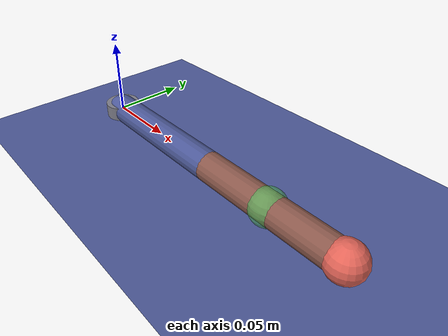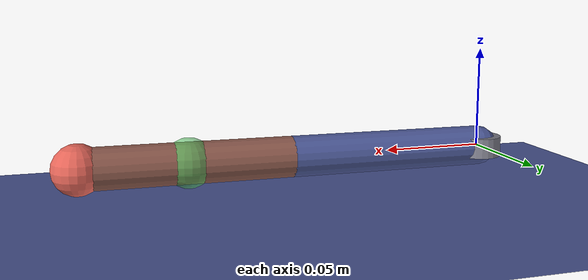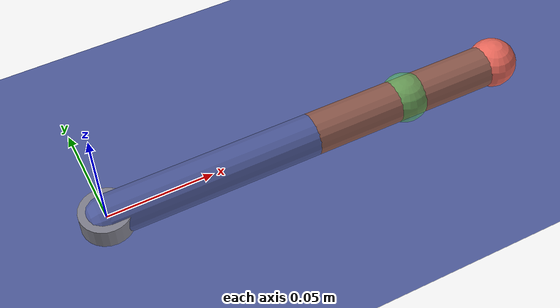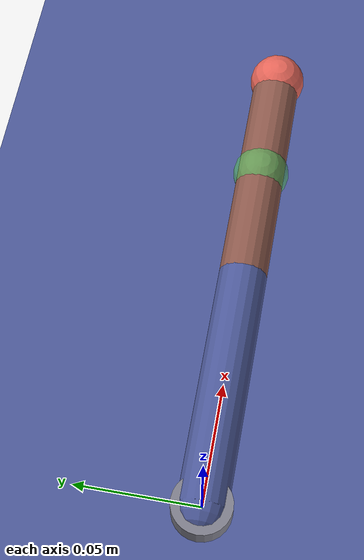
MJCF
<mujoco model="pusher_reach">
  <option timestep="0.01" integrator="implicitfast"/>

  <visual>
    <headlight ambient="0.45 0.45 0.45" diffuse="0.6 0.6 0.6" specular="0.1 0.1 0.1"/>
    <global offwidth="640" offheight="640"/>
  </visual>

  <asset>
    <texture name="grid" type="2d" builtin="checker" rgb1="0.92 0.92 0.94" rgb2="0.83 0.83 0.87"
             width="256" height="256"/>
    <material name="floor_mat" texture="grid" texrepeat="8 8" reflectance="0"/>
  </asset>

  <default>
    <!-- shared link look; no collisions (contype/conaffinity 0) -->
    <geom type="capsule" size="0.01" rgba="0.30 0.35 0.60 1" contype="0" conaffinity="0"/>
    <joint type="hinge" axis="0 0 1" damping="0.1" armature="0.01"/>
  </default>

  <worldbody>
    <!-- top-down camera looking along -z at the x-y plane the arm lives in -->
    <camera name="top" pos="0 0 0.5" quat="1 0 0 0" fovy="50"/>

    <!-- visual-only floor (nothing collides) -->
    <geom name="floor" type="plane" pos="0 0 -0.02" size="0.3 0.3 0.1" material="floor_mat"
          contype="0" conaffinity="0"/>

    <!-- fixed shoulder anchor at the origin (visual hub) -->
    <geom name="anchor" type="cylinder" size="0.012 0.005" pos="0 0 0"
          rgba="0.5 0.5 0.55 1" contype="0" conaffinity="0"/>

    <!-- link 1: shoulder hinge at origin, capsule out to (0.1, 0, 0) -->
    <body name="link1" pos="0 0 0">
      <joint name="shoulder"/>
      <geom name="link1_geom" fromto="0 0 0 0.1 0 0"/>

      <!-- link 2: elbow hinge at the end of link 1 -->
      <body name="link2" pos="0.1 0 0">
        <joint name="elbow"/>
        <geom name="link2_geom" fromto="0 0 0 0.1 0 0" rgba="0.55 0.35 0.30 1"/>
        <!-- end-effector marker at the far tip of link 2 -->
        <site name="fingertip" pos="0.1 0 0" size="0.012" rgba="0.9 0.4 0.35 1"/>
      </body>
    </body>

    <!-- seeded random target: a mocap body, positioned each reset via mocap_pos -->
    <body name="target" mocap="true" pos="0.15 0 0">
      <geom name="target_geom" type="sphere" size="0.012" rgba="0.35 0.8 0.4 0.6"
            contype="0" conaffinity="0"/>
    </body>
  </worldbody>

  <actuator>
    <!-- one torque motor per joint: ctrl in [-1, 1] => +-0.5 N*m -->
    <motor name="shoulder_torque" joint="shoulder" gear="0.5" ctrlrange="-1 1"/>
    <motor name="elbow_torque"    joint="elbow"    gear="0.5" ctrlrange="-1 1"/>
  </actuator>
</mujoco>
